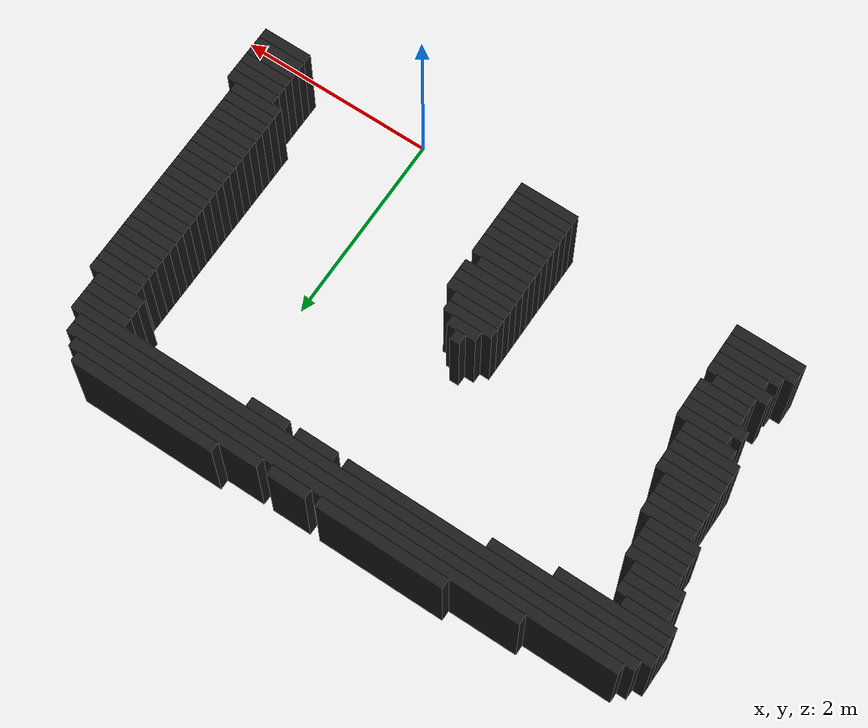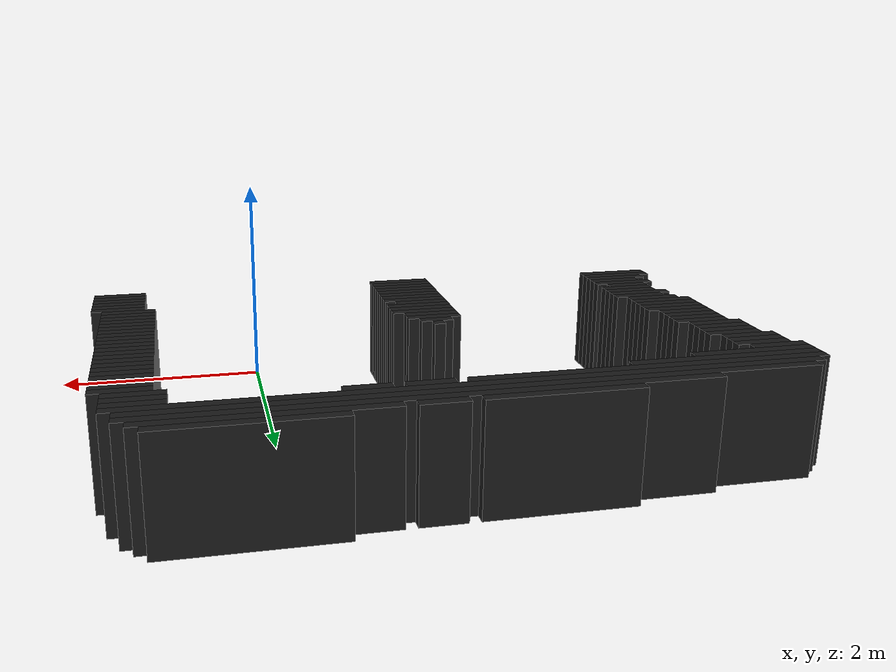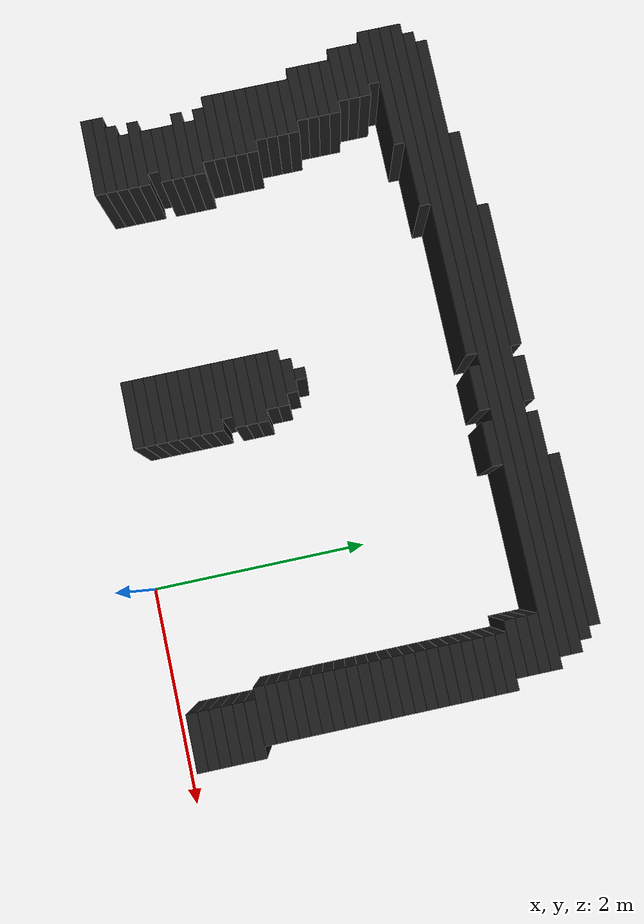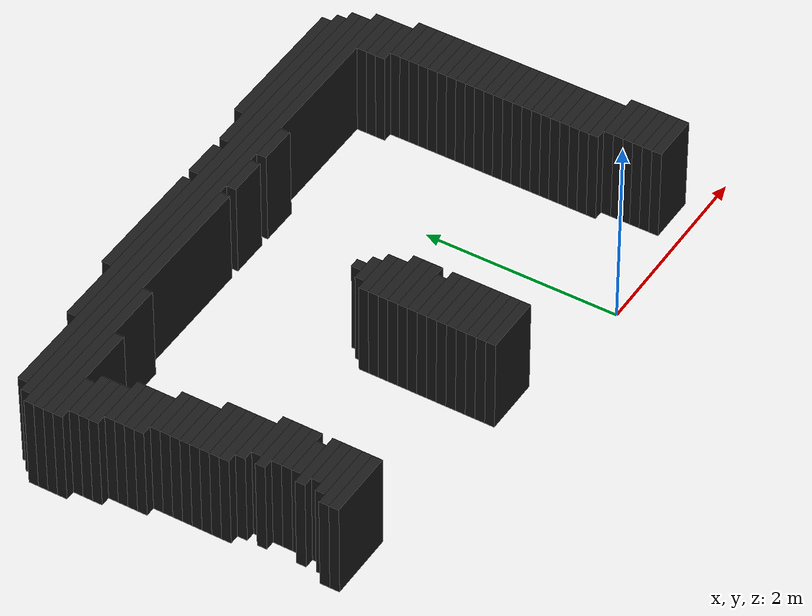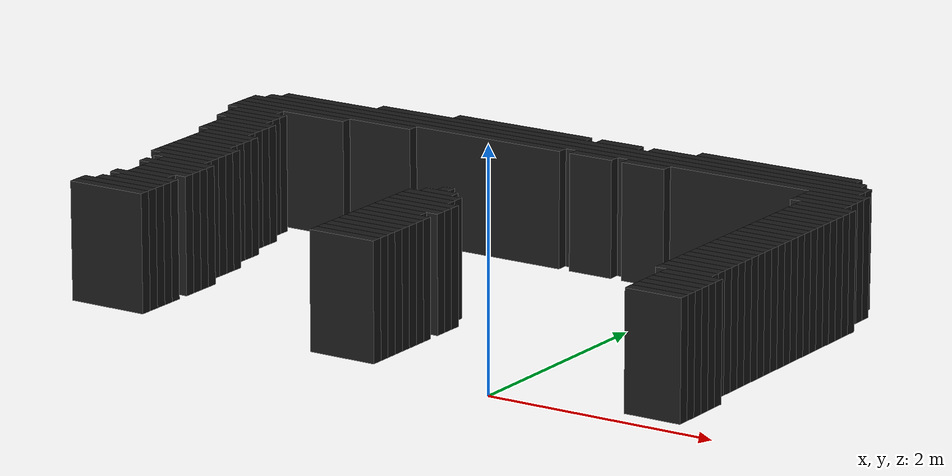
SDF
<sdf version="1.9">
 <world name="drawn_tb4_world">
  <model name="drawn_wall_0000">
   <static>true</static>
   <pose>0.3500 3.7500 0.5000 0.0000 0.0000 0.0000</pose>
   <link name="link">
    <collision name="collision"><geometry><box><size>1.5000 0.1000 1.0000</size></box></geometry></collision>
    <visual name="visual">
     <geometry><box><size>1.5000 0.1000 1.0000</size></box></geometry>
     <material><ambient>0.1 0.1 0.1 1</ambient><diffuse>0.1 0.1 0.1 1</diffuse></material>
    </visual>
   </link>
  </model>
  <model name="drawn_wall_0001">
   <static>true</static>
   <pose>-2.0500 3.6500 0.5000 0.0000 0.0000 0.0000</pose>
   <link name="link">
    <collision name="collision"><geometry><box><size>1.3000 0.1000 1.0000</size></box></geometry></collision>
    <visual name="visual">
     <geometry><box><size>1.3000 0.1000 1.0000</size></box></geometry>
     <material><ambient>0.1 0.1 0.1 1</ambient><diffuse>0.1 0.1 0.1 1</diffuse></material>
    </visual>
   </link>
  </model>
  <model name="drawn_wall_0002">
   <static>true</static>
   <pose>-1.1000 3.6500 0.5000 0.0000 0.0000 0.0000</pose>
   <link name="link">
    <collision name="collision"><geometry><box><size>0.4000 0.1000 1.0000</size></box></geometry></collision>
    <visual name="visual">
     <geometry><box><size>0.4000 0.1000 1.0000</size></box></geometry>
     <material><ambient>0.1 0.1 0.1 1</ambient><diffuse>0.1 0.1 0.1 1</diffuse></material>
    </visual>
   </link>
  </model>
  <model name="drawn_wall_0003">
   <static>true</static>
   <pose>0.2000 3.6500 0.5000 0.0000 0.0000 0.0000</pose>
   <link name="link">
    <collision name="collision"><geometry><box><size>2.0000 0.1000 1.0000</size></box></geometry></collision>
    <visual name="visual">
     <geometry><box><size>2.0000 0.1000 1.0000</size></box></geometry>
     <material><ambient>0.1 0.1 0.1 1</ambient><diffuse>0.1 0.1 0.1 1</diffuse></material>
    </visual>
   </link>
  </model>
  <model name="drawn_wall_0004">
   <static>true</static>
   <pose>-1.0500 3.5500 0.5000 0.0000 0.0000 0.0000</pose>
   <link name="link">
    <collision name="collision"><geometry><box><size>4.7000 0.1000 1.0000</size></box></geometry></collision>
    <visual name="visual">
     <geometry><box><size>4.7000 0.1000 1.0000</size></box></geometry>
     <material><ambient>0.1 0.1 0.1 1</ambient><diffuse>0.1 0.1 0.1 1</diffuse></material>
    </visual>
   </link>
  </model>
  <model name="drawn_wall_0005">
   <static>true</static>
   <pose>-1.5000 3.4500 0.5000 0.0000 0.0000 0.0000</pose>
   <link name="link">
    <collision name="collision"><geometry><box><size>5.6000 0.1000 1.0000</size></box></geometry></collision>
    <visual name="visual">
     <geometry><box><size>5.6000 0.1000 1.0000</size></box></geometry>
     <material><ambient>0.1 0.1 0.1 1</ambient><diffuse>0.1 0.1 0.1 1</diffuse></material>
    </visual>
   </link>
  </model>
  <model name="drawn_wall_0006">
   <static>true</static>
   <pose>-1.5000 3.3500 0.5000 0.0000 0.0000 0.0000</pose>
   <link name="link">
    <collision name="collision"><geometry><box><size>5.8000 0.1000 1.0000</size></box></geometry></collision>
    <visual name="visual">
     <geometry><box><size>5.8000 0.1000 1.0000</size></box></geometry>
     <material><ambient>0.1 0.1 0.1 1</ambient><diffuse>0.1 0.1 0.1 1</diffuse></material>
    </visual>
   </link>
  </model>
  <model name="drawn_wall_0007">
   <static>true</static>
   <pose>-2.9500 3.2500 0.5000 0.0000 0.0000 0.0000</pose>
   <link name="link">
    <collision name="collision"><geometry><box><size>3.1000 0.1000 1.0000</size></box></geometry></collision>
    <visual name="visual">
     <geometry><box><size>3.1000 0.1000 1.0000</size></box></geometry>
     <material><ambient>0.1 0.1 0.1 1</ambient><diffuse>0.1 0.1 0.1 1</diffuse></material>
    </visual>
   </link>
  </model>
  <model name="drawn_wall_0008">
   <static>true</static>
   <pose>-1.1000 3.2500 0.5000 0.0000 0.0000 0.0000</pose>
   <link name="link">
    <collision name="collision"><geometry><box><size>0.4000 0.1000 1.0000</size></box></geometry></collision>
    <visual name="visual">
     <geometry><box><size>0.4000 0.1000 1.0000</size></box></geometry>
     <material><ambient>0.1 0.1 0.1 1</ambient><diffuse>0.1 0.1 0.1 1</diffuse></material>
    </visual>
   </link>
  </model>
  <model name="drawn_wall_0009">
   <static>true</static>
   <pose>-0.6000 3.2500 0.5000 0.0000 0.0000 0.0000</pose>
   <link name="link">
    <collision name="collision"><geometry><box><size>0.4000 0.1000 1.0000</size></box></geometry></collision>
    <visual name="visual">
     <geometry><box><size>0.4000 0.1000 1.0000</size></box></geometry>
     <material><ambient>0.1 0.1 0.1 1</ambient><diffuse>0.1 0.1 0.1 1</diffuse></material>
    </visual>
   </link>
  </model>
  <model name="drawn_wall_0010">
   <static>true</static>
   <pose>1.1500 3.2500 0.5000 0.0000 0.0000 0.0000</pose>
   <link name="link">
    <collision name="collision"><geometry><box><size>0.5000 0.1000 1.0000</size></box></geometry></collision>
    <visual name="visual">
     <geometry><box><size>0.5000 0.1000 1.0000</size></box></geometry>
     <material><ambient>0.1 0.1 0.1 1</ambient><diffuse>0.1 0.1 0.1 1</diffuse></material>
    </visual>
   </link>
  </model>
  <model name="drawn_wall_0011">
   <static>true</static>
   <pose>-3.6500 3.1500 0.5000 0.0000 0.0000 0.0000</pose>
   <link name="link">
    <collision name="collision"><geometry><box><size>1.7000 0.1000 1.0000</size></box></geometry></collision>
    <visual name="visual">
     <geometry><box><size>1.7000 0.1000 1.0000</size></box></geometry>
     <material><ambient>0.1 0.1 0.1 1</ambient><diffuse>0.1 0.1 0.1 1</diffuse></material>
    </visual>
   </link>
  </model>
  <model name="drawn_wall_0012">
   <static>true</static>
   <pose>1.1500 3.1500 0.5000 0.0000 0.0000 0.0000</pose>
   <link name="link">
    <collision name="collision"><geometry><box><size>0.5000 0.1000 1.0000</size></box></geometry></collision>
    <visual name="visual">
     <geometry><box><size>0.5000 0.1000 1.0000</size></box></geometry>
     <material><ambient>0.1 0.1 0.1 1</ambient><diffuse>0.1 0.1 0.1 1</diffuse></material>
    </visual>
   </link>
  </model>
  <model name="drawn_wall_0013">
   <static>true</static>
   <pose>-3.9500 3.0500 0.5000 0.0000 0.0000 0.0000</pose>
   <link name="link">
    <collision name="collision"><geometry><box><size>1.1000 0.1000 1.0000</size></box></geometry></collision>
    <visual name="visual">
     <geometry><box><size>1.1000 0.1000 1.0000</size></box></geometry>
     <material><ambient>0.1 0.1 0.1 1</ambient><diffuse>0.1 0.1 0.1 1</diffuse></material>
    </visual>
   </link>
  </model>
  <model name="drawn_wall_0014">
   <static>true</static>
   <pose>1.1500 3.0500 0.5000 0.0000 0.0000 0.0000</pose>
   <link name="link">
    <collision name="collision"><geometry><box><size>0.5000 0.1000 1.0000</size></box></geometry></collision>
    <visual name="visual">
     <geometry><box><size>0.5000 0.1000 1.0000</size></box></geometry>
     <material><ambient>0.1 0.1 0.1 1</ambient><diffuse>0.1 0.1 0.1 1</diffuse></material>
    </visual>
   </link>
  </model>
  <model name="drawn_wall_0015">
   <static>true</static>
   <pose>-4.2500 2.9500 0.5000 0.0000 0.0000 0.0000</pose>
   <link name="link">
    <collision name="collision"><geometry><box><size>0.5000 0.1000 1.0000</size></box></geometry></collision>
    <visual name="visual">
     <geometry><box><size>0.5000 0.1000 1.0000</size></box></geometry>
     <material><ambient>0.1 0.1 0.1 1</ambient><diffuse>0.1 0.1 0.1 1</diffuse></material>
    </visual>
   </link>
  </model>
  <model name="drawn_wall_0016">
   <static>true</static>
   <pose>1.2500 2.9500 0.5000 0.0000 0.0000 0.0000</pose>
   <link name="link">
    <collision name="collision"><geometry><box><size>0.5000 0.1000 1.0000</size></box></geometry></collision>
    <visual name="visual">
     <geometry><box><size>0.5000 0.1000 1.0000</size></box></geometry>
     <material><ambient>0.1 0.1 0.1 1</ambient><diffuse>0.1 0.1 0.1 1</diffuse></material>
    </visual>
   </link>
  </model>
  <model name="drawn_wall_0017">
   <static>true</static>
   <pose>-4.1500 2.8500 0.5000 0.0000 0.0000 0.0000</pose>
   <link name="link">
    <collision name="collision"><geometry><box><size>0.5000 0.1000 1.0000</size></box></geometry></collision>
    <visual name="visual">
     <geometry><box><size>0.5000 0.1000 1.0000</size></box></geometry>
     <material><ambient>0.1 0.1 0.1 1</ambient><diffuse>0.1 0.1 0.1 1</diffuse></material>
    </visual>
   </link>
  </model>
  <model name="drawn_wall_0018">
   <static>true</static>
   <pose>1.2500 2.8500 0.5000 0.0000 0.0000 0.0000</pose>
   <link name="link">
    <collision name="collision"><geometry><box><size>0.5000 0.1000 1.0000</size></box></geometry></collision>
    <visual name="visual">
     <geometry><box><size>0.5000 0.1000 1.0000</size></box></geometry>
     <material><ambient>0.1 0.1 0.1 1</ambient><diffuse>0.1 0.1 0.1 1</diffuse></material>
    </visual>
   </link>
  </model>
  <model name="drawn_wall_0019">
   <static>true</static>
   <pose>-4.1500 2.7500 0.5000 0.0000 0.0000 0.0000</pose>
   <link name="link">
    <collision name="collision"><geometry><box><size>0.5000 0.1000 1.0000</size></box></geometry></collision>
    <visual name="visual">
     <geometry><box><size>0.5000 0.1000 1.0000</size></box></geometry>
     <material><ambient>0.1 0.1 0.1 1</ambient><diffuse>0.1 0.1 0.1 1</diffuse></material>
    </visual>
   </link>
  </model>
  <model name="drawn_wall_0020">
   <static>true</static>
   <pose>1.2500 2.7500 0.5000 0.0000 0.0000 0.0000</pose>
   <link name="link">
    <collision name="collision"><geometry><box><size>0.5000 0.1000 1.0000</size></box></geometry></collision>
    <visual name="visual">
     <geometry><box><size>0.5000 0.1000 1.0000</size></box></geometry>
     <material><ambient>0.1 0.1 0.1 1</ambient><diffuse>0.1 0.1 0.1 1</diffuse></material>
    </visual>
   </link>
  </model>
  <model name="drawn_wall_0021">
   <static>true</static>
   <pose>-4.1500 2.6500 0.5000 0.0000 0.0000 0.0000</pose>
   <link name="link">
    <collision name="collision"><geometry><box><size>0.5000 0.1000 1.0000</size></box></geometry></collision>
    <visual name="visual">
     <geometry><box><size>0.5000 0.1000 1.0000</size></box></geometry>
     <material><ambient>0.1 0.1 0.1 1</ambient><diffuse>0.1 0.1 0.1 1</diffuse></material>
    </visual>
   </link>
  </model>
  <model name="drawn_wall_0022">
   <static>true</static>
   <pose>1.2500 2.6500 0.5000 0.0000 0.0000 0.0000</pose>
   <link name="link">
    <collision name="collision"><geometry><box><size>0.5000 0.1000 1.0000</size></box></geometry></collision>
    <visual name="visual">
     <geometry><box><size>0.5000 0.1000 1.0000</size></box></geometry>
     <material><ambient>0.1 0.1 0.1 1</ambient><diffuse>0.1 0.1 0.1 1</diffuse></material>
    </visual>
   </link>
  </model>
  <model name="drawn_wall_0023">
   <static>true</static>
   <pose>-4.0500 2.5500 0.5000 0.0000 0.0000 0.0000</pose>
   <link name="link">
    <collision name="collision"><geometry><box><size>0.5000 0.1000 1.0000</size></box></geometry></collision>
    <visual name="visual">
     <geometry><box><size>0.5000 0.1000 1.0000</size></box></geometry>
     <material><ambient>0.1 0.1 0.1 1</ambient><diffuse>0.1 0.1 0.1 1</diffuse></material>
    </visual>
   </link>
  </model>
  <model name="drawn_wall_0024">
   <static>true</static>
   <pose>1.2500 2.5500 0.5000 0.0000 0.0000 0.0000</pose>
   <link name="link">
    <collision name="collision"><geometry><box><size>0.5000 0.1000 1.0000</size></box></geometry></collision>
    <visual name="visual">
     <geometry><box><size>0.5000 0.1000 1.0000</size></box></geometry>
     <material><ambient>0.1 0.1 0.1 1</ambient><diffuse>0.1 0.1 0.1 1</diffuse></material>
    </visual>
   </link>
  </model>
  <model name="drawn_wall_0025">
   <static>true</static>
   <pose>-4.0500 2.4500 0.5000 0.0000 0.0000 0.0000</pose>
   <link name="link">
    <collision name="collision"><geometry><box><size>0.5000 0.1000 1.0000</size></box></geometry></collision>
    <visual name="visual">
     <geometry><box><size>0.5000 0.1000 1.0000</size></box></geometry>
     <material><ambient>0.1 0.1 0.1 1</ambient><diffuse>0.1 0.1 0.1 1</diffuse></material>
    </visual>
   </link>
  </model>
  <model name="drawn_wall_0026">
   <static>true</static>
   <pose>1.2500 2.4500 0.5000 0.0000 0.0000 0.0000</pose>
   <link name="link">
    <collision name="collision"><geometry><box><size>0.5000 0.1000 1.0000</size></box></geometry></collision>
    <visual name="visual">
     <geometry><box><size>0.5000 0.1000 1.0000</size></box></geometry>
     <material><ambient>0.1 0.1 0.1 1</ambient><diffuse>0.1 0.1 0.1 1</diffuse></material>
    </visual>
   </link>
  </model>
  <model name="drawn_wall_0027">
   <static>true</static>
   <pose>-4.0500 2.3500 0.5000 0.0000 0.0000 0.0000</pose>
   <link name="link">
    <collision name="collision"><geometry><box><size>0.5000 0.1000 1.0000</size></box></geometry></collision>
    <visual name="visual">
     <geometry><box><size>0.5000 0.1000 1.0000</size></box></geometry>
     <material><ambient>0.1 0.1 0.1 1</ambient><diffuse>0.1 0.1 0.1 1</diffuse></material>
    </visual>
   </link>
  </model>
  <model name="drawn_wall_0028">
   <static>true</static>
   <pose>1.2500 2.3500 0.5000 0.0000 0.0000 0.0000</pose>
   <link name="link">
    <collision name="collision"><geometry><box><size>0.5000 0.1000 1.0000</size></box></geometry></collision>
    <visual name="visual">
     <geometry><box><size>0.5000 0.1000 1.0000</size></box></geometry>
     <material><ambient>0.1 0.1 0.1 1</ambient><diffuse>0.1 0.1 0.1 1</diffuse></material>
    </visual>
   </link>
  </model>
  <model name="drawn_wall_0029">
   <static>true</static>
   <pose>-4.0500 2.2500 0.5000 0.0000 0.0000 0.0000</pose>
   <link name="link">
    <collision name="collision"><geometry><box><size>0.5000 0.1000 1.0000</size></box></geometry></collision>
    <visual name="visual">
     <geometry><box><size>0.5000 0.1000 1.0000</size></box></geometry>
     <material><ambient>0.1 0.1 0.1 1</ambient><diffuse>0.1 0.1 0.1 1</diffuse></material>
    </visual>
   </link>
  </model>
  <model name="drawn_wall_0030">
   <static>true</static>
   <pose>1.2500 2.2500 0.5000 0.0000 0.0000 0.0000</pose>
   <link name="link">
    <collision name="collision"><geometry><box><size>0.5000 0.1000 1.0000</size></box></geometry></collision>
    <visual name="visual">
     <geometry><box><size>0.5000 0.1000 1.0000</size></box></geometry>
     <material><ambient>0.1 0.1 0.1 1</ambient><diffuse>0.1 0.1 0.1 1</diffuse></material>
    </visual>
   </link>
  </model>
  <model name="drawn_wall_0031">
   <static>true</static>
   <pose>-3.9500 2.1500 0.5000 0.0000 0.0000 0.0000</pose>
   <link name="link">
    <collision name="collision"><geometry><box><size>0.5000 0.1000 1.0000</size></box></geometry></collision>
    <visual name="visual">
     <geometry><box><size>0.5000 0.1000 1.0000</size></box></geometry>
     <material><ambient>0.1 0.1 0.1 1</ambient><diffuse>0.1 0.1 0.1 1</diffuse></material>
    </visual>
   </link>
  </model>
  <model name="drawn_wall_0032">
   <static>true</static>
   <pose>1.2500 2.1500 0.5000 0.0000 0.0000 0.0000</pose>
   <link name="link">
    <collision name="collision"><geometry><box><size>0.5000 0.1000 1.0000</size></box></geometry></collision>
    <visual name="visual">
     <geometry><box><size>0.5000 0.1000 1.0000</size></box></geometry>
     <material><ambient>0.1 0.1 0.1 1</ambient><diffuse>0.1 0.1 0.1 1</diffuse></material>
    </visual>
   </link>
  </model>
  <model name="drawn_wall_0033">
   <static>true</static>
   <pose>-3.9500 2.0500 0.5000 0.0000 0.0000 0.0000</pose>
   <link name="link">
    <collision name="collision"><geometry><box><size>0.5000 0.1000 1.0000</size></box></geometry></collision>
    <visual name="visual">
     <geometry><box><size>0.5000 0.1000 1.0000</size></box></geometry>
     <material><ambient>0.1 0.1 0.1 1</ambient><diffuse>0.1 0.1 0.1 1</diffuse></material>
    </visual>
   </link>
  </model>
  <model name="drawn_wall_0034">
   <static>true</static>
   <pose>1.2500 2.0500 0.5000 0.0000 0.0000 0.0000</pose>
   <link name="link">
    <collision name="collision"><geometry><box><size>0.5000 0.1000 1.0000</size></box></geometry></collision>
    <visual name="visual">
     <geometry><box><size>0.5000 0.1000 1.0000</size></box></geometry>
     <material><ambient>0.1 0.1 0.1 1</ambient><diffuse>0.1 0.1 0.1 1</diffuse></material>
    </visual>
   </link>
  </model>
  <model name="drawn_wall_0035">
   <static>true</static>
   <pose>-3.9500 1.9500 0.5000 0.0000 0.0000 0.0000</pose>
   <link name="link">
    <collision name="collision"><geometry><box><size>0.5000 0.1000 1.0000</size></box></geometry></collision>
    <visual name="visual">
     <geometry><box><size>0.5000 0.1000 1.0000</size></box></geometry>
     <material><ambient>0.1 0.1 0.1 1</ambient><diffuse>0.1 0.1 0.1 1</diffuse></material>
    </visual>
   </link>
  </model>
  <model name="drawn_wall_0036">
   <static>true</static>
   <pose>1.2500 1.9500 0.5000 0.0000 0.0000 0.0000</pose>
   <link name="link">
    <collision name="collision"><geometry><box><size>0.5000 0.1000 1.0000</size></box></geometry></collision>
    <visual name="visual">
     <geometry><box><size>0.5000 0.1000 1.0000</size></box></geometry>
     <material><ambient>0.1 0.1 0.1 1</ambient><diffuse>0.1 0.1 0.1 1</diffuse></material>
    </visual>
   </link>
  </model>
  <model name="drawn_wall_0037">
   <static>true</static>
   <pose>-3.9500 1.8500 0.5000 0.0000 0.0000 0.0000</pose>
   <link name="link">
    <collision name="collision"><geometry><box><size>0.5000 0.1000 1.0000</size></box></geometry></collision>
    <visual name="visual">
     <geometry><box><size>0.5000 0.1000 1.0000</size></box></geometry>
     <material><ambient>0.1 0.1 0.1 1</ambient><diffuse>0.1 0.1 0.1 1</diffuse></material>
    </visual>
   </link>
  </model>
  <model name="drawn_wall_0038">
   <static>true</static>
   <pose>1.2500 1.8500 0.5000 0.0000 0.0000 0.0000</pose>
   <link name="link">
    <collision name="collision"><geometry><box><size>0.5000 0.1000 1.0000</size></box></geometry></collision>
    <visual name="visual">
     <geometry><box><size>0.5000 0.1000 1.0000</size></box></geometry>
     <material><ambient>0.1 0.1 0.1 1</ambient><diffuse>0.1 0.1 0.1 1</diffuse></material>
    </visual>
   </link>
  </model>
  <model name="drawn_wall_0039">
   <static>true</static>
   <pose>-3.9000 1.7500 0.5000 0.0000 0.0000 0.0000</pose>
   <link name="link">
    <collision name="collision"><geometry><box><size>0.6000 0.1000 1.0000</size></box></geometry></collision>
    <visual name="visual">
     <geometry><box><size>0.6000 0.1000 1.0000</size></box></geometry>
     <material><ambient>0.1 0.1 0.1 1</ambient><diffuse>0.1 0.1 0.1 1</diffuse></material>
    </visual>
   </link>
  </model>
  <model name="drawn_wall_0040">
   <static>true</static>
   <pose>-1.5500 1.7500 0.5000 0.0000 0.0000 0.0000</pose>
   <link name="link">
    <collision name="collision"><geometry><box><size>0.1000 0.1000 1.0000</size></box></geometry></collision>
    <visual name="visual">
     <geometry><box><size>0.1000 0.1000 1.0000</size></box></geometry>
     <material><ambient>0.1 0.1 0.1 1</ambient><diffuse>0.1 0.1 0.1 1</diffuse></material>
    </visual>
   </link>
  </model>
  <model name="drawn_wall_0041">
   <static>true</static>
   <pose>1.2500 1.7500 0.5000 0.0000 0.0000 0.0000</pose>
   <link name="link">
    <collision name="collision"><geometry><box><size>0.5000 0.1000 1.0000</size></box></geometry></collision>
    <visual name="visual">
     <geometry><box><size>0.5000 0.1000 1.0000</size></box></geometry>
     <material><ambient>0.1 0.1 0.1 1</ambient><diffuse>0.1 0.1 0.1 1</diffuse></material>
    </visual>
   </link>
  </model>
  <model name="drawn_wall_0042">
   <static>true</static>
   <pose>-3.9000 1.6500 0.5000 0.0000 0.0000 0.0000</pose>
   <link name="link">
    <collision name="collision"><geometry><box><size>0.6000 0.1000 1.0000</size></box></geometry></collision>
    <visual name="visual">
     <geometry><box><size>0.6000 0.1000 1.0000</size></box></geometry>
     <material><ambient>0.1 0.1 0.1 1</ambient><diffuse>0.1 0.1 0.1 1</diffuse></material>
    </visual>
   </link>
  </model>
  <model name="drawn_wall_0043">
   <static>true</static>
   <pose>-1.5500 1.6500 0.5000 0.0000 0.0000 0.0000</pose>
   <link name="link">
    <collision name="collision"><geometry><box><size>0.3000 0.1000 1.0000</size></box></geometry></collision>
    <visual name="visual">
     <geometry><box><size>0.3000 0.1000 1.0000</size></box></geometry>
     <material><ambient>0.1 0.1 0.1 1</ambient><diffuse>0.1 0.1 0.1 1</diffuse></material>
    </visual>
   </link>
  </model>
  <model name="drawn_wall_0044">
   <static>true</static>
   <pose>1.2500 1.6500 0.5000 0.0000 0.0000 0.0000</pose>
   <link name="link">
    <collision name="collision"><geometry><box><size>0.5000 0.1000 1.0000</size></box></geometry></collision>
    <visual name="visual">
     <geometry><box><size>0.5000 0.1000 1.0000</size></box></geometry>
     <material><ambient>0.1 0.1 0.1 1</ambient><diffuse>0.1 0.1 0.1 1</diffuse></material>
    </visual>
   </link>
  </model>
  <model name="drawn_wall_0045">
   <static>true</static>
   <pose>-3.9000 1.5500 0.5000 0.0000 0.0000 0.0000</pose>
   <link name="link">
    <collision name="collision"><geometry><box><size>0.6000 0.1000 1.0000</size></box></geometry></collision>
    <visual name="visual">
     <geometry><box><size>0.6000 0.1000 1.0000</size></box></geometry>
     <material><ambient>0.1 0.1 0.1 1</ambient><diffuse>0.1 0.1 0.1 1</diffuse></material>
    </visual>
   </link>
  </model>
  <model name="drawn_wall_0046">
   <static>true</static>
   <pose>-1.5500 1.5500 0.5000 0.0000 0.0000 0.0000</pose>
   <link name="link">
    <collision name="collision"><geometry><box><size>0.5000 0.1000 1.0000</size></box></geometry></collision>
    <visual name="visual">
     <geometry><box><size>0.5000 0.1000 1.0000</size></box></geometry>
     <material><ambient>0.1 0.1 0.1 1</ambient><diffuse>0.1 0.1 0.1 1</diffuse></material>
    </visual>
   </link>
  </model>
  <model name="drawn_wall_0047">
   <static>true</static>
   <pose>1.2500 1.5500 0.5000 0.0000 0.0000 0.0000</pose>
   <link name="link">
    <collision name="collision"><geometry><box><size>0.5000 0.1000 1.0000</size></box></geometry></collision>
    <visual name="visual">
     <geometry><box><size>0.5000 0.1000 1.0000</size></box></geometry>
     <material><ambient>0.1 0.1 0.1 1</ambient><diffuse>0.1 0.1 0.1 1</diffuse></material>
    </visual>
   </link>
  </model>
  <model name="drawn_wall_0048">
   <static>true</static>
   <pose>-3.9000 1.4500 0.5000 0.0000 0.0000 0.0000</pose>
   <link name="link">
    <collision name="collision"><geometry><box><size>0.6000 0.1000 1.0000</size></box></geometry></collision>
    <visual name="visual">
     <geometry><box><size>0.6000 0.1000 1.0000</size></box></geometry>
     <material><ambient>0.1 0.1 0.1 1</ambient><diffuse>0.1 0.1 0.1 1</diffuse></material>
    </visual>
   </link>
  </model>
  <model name="drawn_wall_0049">
   <static>true</static>
   <pose>-1.5500 1.4500 0.5000 0.0000 0.0000 0.0000</pose>
   <link name="link">
    <collision name="collision"><geometry><box><size>0.5000 0.1000 1.0000</size></box></geometry></collision>
    <visual name="visual">
     <geometry><box><size>0.5000 0.1000 1.0000</size></box></geometry>
     <material><ambient>0.1 0.1 0.1 1</ambient><diffuse>0.1 0.1 0.1 1</diffuse></material>
    </visual>
   </link>
  </model>
  <model name="drawn_wall_0050">
   <static>true</static>
   <pose>1.2500 1.4500 0.5000 0.0000 0.0000 0.0000</pose>
   <link name="link">
    <collision name="collision"><geometry><box><size>0.5000 0.1000 1.0000</size></box></geometry></collision>
    <visual name="visual">
     <geometry><box><size>0.5000 0.1000 1.0000</size></box></geometry>
     <material><ambient>0.1 0.1 0.1 1</ambient><diffuse>0.1 0.1 0.1 1</diffuse></material>
    </visual>
   </link>
  </model>
  <model name="drawn_wall_0051">
   <static>true</static>
   <pose>-3.8500 1.3500 0.5000 0.0000 0.0000 0.0000</pose>
   <link name="link">
    <collision name="collision"><geometry><box><size>0.5000 0.1000 1.0000</size></box></geometry></collision>
    <visual name="visual">
     <geometry><box><size>0.5000 0.1000 1.0000</size></box></geometry>
     <material><ambient>0.1 0.1 0.1 1</ambient><diffuse>0.1 0.1 0.1 1</diffuse></material>
    </visual>
   </link>
  </model>
  <model name="drawn_wall_0052">
   <static>true</static>
   <pose>-1.5000 1.3500 0.5000 0.0000 0.0000 0.0000</pose>
   <link name="link">
    <collision name="collision"><geometry><box><size>0.6000 0.1000 1.0000</size></box></geometry></collision>
    <visual name="visual">
     <geometry><box><size>0.6000 0.1000 1.0000</size></box></geometry>
     <material><ambient>0.1 0.1 0.1 1</ambient><diffuse>0.1 0.1 0.1 1</diffuse></material>
    </visual>
   </link>
  </model>
  <model name="drawn_wall_0053">
   <static>true</static>
   <pose>1.2500 1.3500 0.5000 0.0000 0.0000 0.0000</pose>
   <link name="link">
    <collision name="collision"><geometry><box><size>0.5000 0.1000 1.0000</size></box></geometry></collision>
    <visual name="visual">
     <geometry><box><size>0.5000 0.1000 1.0000</size></box></geometry>
     <material><ambient>0.1 0.1 0.1 1</ambient><diffuse>0.1 0.1 0.1 1</diffuse></material>
    </visual>
   </link>
  </model>
  <model name="drawn_wall_0054">
   <static>true</static>
   <pose>-3.7500 1.2500 0.5000 0.0000 0.0000 0.0000</pose>
   <link name="link">
    <collision name="collision"><geometry><box><size>0.5000 0.1000 1.0000</size></box></geometry></collision>
    <visual name="visual">
     <geometry><box><size>0.5000 0.1000 1.0000</size></box></geometry>
     <material><ambient>0.1 0.1 0.1 1</ambient><diffuse>0.1 0.1 0.1 1</diffuse></material>
    </visual>
   </link>
  </model>
  <model name="drawn_wall_0055">
   <static>true</static>
   <pose>-1.5000 1.2500 0.5000 0.0000 0.0000 0.0000</pose>
   <link name="link">
    <collision name="collision"><geometry><box><size>0.6000 0.1000 1.0000</size></box></geometry></collision>
    <visual name="visual">
     <geometry><box><size>0.6000 0.1000 1.0000</size></box></geometry>
     <material><ambient>0.1 0.1 0.1 1</ambient><diffuse>0.1 0.1 0.1 1</diffuse></material>
    </visual>
   </link>
  </model>
  <model name="drawn_wall_0056">
   <static>true</static>
   <pose>1.2500 1.2500 0.5000 0.0000 0.0000 0.0000</pose>
   <link name="link">
    <collision name="collision"><geometry><box><size>0.5000 0.1000 1.0000</size></box></geometry></collision>
    <visual name="visual">
     <geometry><box><size>0.5000 0.1000 1.0000</size></box></geometry>
     <material><ambient>0.1 0.1 0.1 1</ambient><diffuse>0.1 0.1 0.1 1</diffuse></material>
    </visual>
   </link>
  </model>
  <model name="drawn_wall_0057">
   <static>true</static>
   <pose>-3.8000 1.1500 0.5000 0.0000 0.0000 0.0000</pose>
   <link name="link">
    <collision name="collision"><geometry><box><size>0.6000 0.1000 1.0000</size></box></geometry></collision>
    <visual name="visual">
     <geometry><box><size>0.6000 0.1000 1.0000</size></box></geometry>
     <material><ambient>0.1 0.1 0.1 1</ambient><diffuse>0.1 0.1 0.1 1</diffuse></material>
    </visual>
   </link>
  </model>
  <model name="drawn_wall_0058">
   <static>true</static>
   <pose>-1.5000 1.1500 0.5000 0.0000 0.0000 0.0000</pose>
   <link name="link">
    <collision name="collision"><geometry><box><size>0.6000 0.1000 1.0000</size></box></geometry></collision>
    <visual name="visual">
     <geometry><box><size>0.6000 0.1000 1.0000</size></box></geometry>
     <material><ambient>0.1 0.1 0.1 1</ambient><diffuse>0.1 0.1 0.1 1</diffuse></material>
    </visual>
   </link>
  </model>
  <model name="drawn_wall_0059">
   <static>true</static>
   <pose>1.2500 1.1500 0.5000 0.0000 0.0000 0.0000</pose>
   <link name="link">
    <collision name="collision"><geometry><box><size>0.5000 0.1000 1.0000</size></box></geometry></collision>
    <visual name="visual">
     <geometry><box><size>0.5000 0.1000 1.0000</size></box></geometry>
     <material><ambient>0.1 0.1 0.1 1</ambient><diffuse>0.1 0.1 0.1 1</diffuse></material>
    </visual>
   </link>
  </model>
  <model name="drawn_wall_0060">
   <static>true</static>
   <pose>-3.7500 1.0500 0.5000 0.0000 0.0000 0.0000</pose>
   <link name="link">
    <collision name="collision"><geometry><box><size>0.5000 0.1000 1.0000</size></box></geometry></collision>
    <visual name="visual">
     <geometry><box><size>0.5000 0.1000 1.0000</size></box></geometry>
     <material><ambient>0.1 0.1 0.1 1</ambient><diffuse>0.1 0.1 0.1 1</diffuse></material>
    </visual>
   </link>
  </model>
  <model name="drawn_wall_0061">
   <static>true</static>
   <pose>-1.5500 1.0500 0.5000 0.0000 0.0000 0.0000</pose>
   <link name="link">
    <collision name="collision"><geometry><box><size>0.5000 0.1000 1.0000</size></box></geometry></collision>
    <visual name="visual">
     <geometry><box><size>0.5000 0.1000 1.0000</size></box></geometry>
     <material><ambient>0.1 0.1 0.1 1</ambient><diffuse>0.1 0.1 0.1 1</diffuse></material>
    </visual>
   </link>
  </model>
  <model name="drawn_wall_0062">
   <static>true</static>
   <pose>1.2500 1.0500 0.5000 0.0000 0.0000 0.0000</pose>
   <link name="link">
    <collision name="collision"><geometry><box><size>0.5000 0.1000 1.0000</size></box></geometry></collision>
    <visual name="visual">
     <geometry><box><size>0.5000 0.1000 1.0000</size></box></geometry>
     <material><ambient>0.1 0.1 0.1 1</ambient><diffuse>0.1 0.1 0.1 1</diffuse></material>
    </visual>
   </link>
  </model>
  <model name="drawn_wall_0063">
   <static>true</static>
   <pose>-3.7500 0.9500 0.5000 0.0000 0.0000 0.0000</pose>
   <link name="link">
    <collision name="collision"><geometry><box><size>0.5000 0.1000 1.0000</size></box></geometry></collision>
    <visual name="visual">
     <geometry><box><size>0.5000 0.1000 1.0000</size></box></geometry>
     <material><ambient>0.1 0.1 0.1 1</ambient><diffuse>0.1 0.1 0.1 1</diffuse></material>
    </visual>
   </link>
  </model>
  <model name="drawn_wall_0064">
   <static>true</static>
   <pose>-1.5000 0.9500 0.5000 0.0000 0.0000 0.0000</pose>
   <link name="link">
    <collision name="collision"><geometry><box><size>0.6000 0.1000 1.0000</size></box></geometry></collision>
    <visual name="visual">
     <geometry><box><size>0.6000 0.1000 1.0000</size></box></geometry>
     <material><ambient>0.1 0.1 0.1 1</ambient><diffuse>0.1 0.1 0.1 1</diffuse></material>
    </visual>
   </link>
  </model>
  <model name="drawn_wall_0065">
   <static>true</static>
   <pose>1.2500 0.9500 0.5000 0.0000 0.0000 0.0000</pose>
   <link name="link">
    <collision name="collision"><geometry><box><size>0.5000 0.1000 1.0000</size></box></geometry></collision>
    <visual name="visual">
     <geometry><box><size>0.5000 0.1000 1.0000</size></box></geometry>
     <material><ambient>0.1 0.1 0.1 1</ambient><diffuse>0.1 0.1 0.1 1</diffuse></material>
    </visual>
   </link>
  </model>
  <model name="drawn_wall_0066">
   <static>true</static>
   <pose>-3.8000 0.8500 0.5000 0.0000 0.0000 0.0000</pose>
   <link name="link">
    <collision name="collision"><geometry><box><size>0.4000 0.1000 1.0000</size></box></geometry></collision>
    <visual name="visual">
     <geometry><box><size>0.4000 0.1000 1.0000</size></box></geometry>
     <material><ambient>0.1 0.1 0.1 1</ambient><diffuse>0.1 0.1 0.1 1</diffuse></material>
    </visual>
   </link>
  </model>
  <model name="drawn_wall_0067">
   <static>true</static>
   <pose>-1.5000 0.8500 0.5000 0.0000 0.0000 0.0000</pose>
   <link name="link">
    <collision name="collision"><geometry><box><size>0.6000 0.1000 1.0000</size></box></geometry></collision>
    <visual name="visual">
     <geometry><box><size>0.6000 0.1000 1.0000</size></box></geometry>
     <material><ambient>0.1 0.1 0.1 1</ambient><diffuse>0.1 0.1 0.1 1</diffuse></material>
    </visual>
   </link>
  </model>
  <model name="drawn_wall_0068">
   <static>true</static>
   <pose>1.2500 0.8500 0.5000 0.0000 0.0000 0.0000</pose>
   <link name="link">
    <collision name="collision"><geometry><box><size>0.5000 0.1000 1.0000</size></box></geometry></collision>
    <visual name="visual">
     <geometry><box><size>0.5000 0.1000 1.0000</size></box></geometry>
     <material><ambient>0.1 0.1 0.1 1</ambient><diffuse>0.1 0.1 0.1 1</diffuse></material>
    </visual>
   </link>
  </model>
  <model name="drawn_wall_0069">
   <static>true</static>
   <pose>-3.8000 0.7500 0.5000 0.0000 0.0000 0.0000</pose>
   <link name="link">
    <collision name="collision"><geometry><box><size>0.6000 0.1000 1.0000</size></box></geometry></collision>
    <visual name="visual">
     <geometry><box><size>0.6000 0.1000 1.0000</size></box></geometry>
     <material><ambient>0.1 0.1 0.1 1</ambient><diffuse>0.1 0.1 0.1 1</diffuse></material>
    </visual>
   </link>
  </model>
  <model name="drawn_wall_0070">
   <static>true</static>
   <pose>-1.5000 0.7500 0.5000 0.0000 0.0000 0.0000</pose>
   <link name="link">
    <collision name="collision"><geometry><box><size>0.6000 0.1000 1.0000</size></box></geometry></collision>
    <visual name="visual">
     <geometry><box><size>0.6000 0.1000 1.0000</size></box></geometry>
     <material><ambient>0.1 0.1 0.1 1</ambient><diffuse>0.1 0.1 0.1 1</diffuse></material>
    </visual>
   </link>
  </model>
  <model name="drawn_wall_0071">
   <static>true</static>
   <pose>1.3500 0.7500 0.5000 0.0000 0.0000 0.0000</pose>
   <link name="link">
    <collision name="collision"><geometry><box><size>0.5000 0.1000 1.0000</size></box></geometry></collision>
    <visual name="visual">
     <geometry><box><size>0.5000 0.1000 1.0000</size></box></geometry>
     <material><ambient>0.1 0.1 0.1 1</ambient><diffuse>0.1 0.1 0.1 1</diffuse></material>
    </visual>
   </link>
  </model>
  <model name="drawn_wall_0072">
   <static>true</static>
   <pose>-3.7500 0.6500 0.5000 0.0000 0.0000 0.0000</pose>
   <link name="link">
    <collision name="collision"><geometry><box><size>0.5000 0.1000 1.0000</size></box></geometry></collision>
    <visual name="visual">
     <geometry><box><size>0.5000 0.1000 1.0000</size></box></geometry>
     <material><ambient>0.1 0.1 0.1 1</ambient><diffuse>0.1 0.1 0.1 1</diffuse></material>
    </visual>
   </link>
  </model>
  <model name="drawn_wall_0073">
   <static>true</static>
   <pose>-1.5000 0.6500 0.5000 0.0000 0.0000 0.0000</pose>
   <link name="link">
    <collision name="collision"><geometry><box><size>0.6000 0.1000 1.0000</size></box></geometry></collision>
    <visual name="visual">
     <geometry><box><size>0.6000 0.1000 1.0000</size></box></geometry>
     <material><ambient>0.1 0.1 0.1 1</ambient><diffuse>0.1 0.1 0.1 1</diffuse></material>
    </visual>
   </link>
  </model>
  <model name="drawn_wall_0074">
   <static>true</static>
   <pose>1.3500 0.6500 0.5000 0.0000 0.0000 0.0000</pose>
   <link name="link">
    <collision name="collision"><geometry><box><size>0.5000 0.1000 1.0000</size></box></geometry></collision>
    <visual name="visual">
     <geometry><box><size>0.5000 0.1000 1.0000</size></box></geometry>
     <material><ambient>0.1 0.1 0.1 1</ambient><diffuse>0.1 0.1 0.1 1</diffuse></material>
    </visual>
   </link>
  </model>
  <model name="drawn_wall_0075">
   <static>true</static>
   <pose>-3.8000 0.5500 0.5000 0.0000 0.0000 0.0000</pose>
   <link name="link">
    <collision name="collision"><geometry><box><size>0.6000 0.1000 1.0000</size></box></geometry></collision>
    <visual name="visual">
     <geometry><box><size>0.6000 0.1000 1.0000</size></box></geometry>
     <material><ambient>0.1 0.1 0.1 1</ambient><diffuse>0.1 0.1 0.1 1</diffuse></material>
    </visual>
   </link>
  </model>
  <model name="drawn_wall_0076">
   <static>true</static>
   <pose>-1.5000 0.5500 0.5000 0.0000 0.0000 0.0000</pose>
   <link name="link">
    <collision name="collision"><geometry><box><size>0.6000 0.1000 1.0000</size></box></geometry></collision>
    <visual name="visual">
     <geometry><box><size>0.6000 0.1000 1.0000</size></box></geometry>
     <material><ambient>0.1 0.1 0.1 1</ambient><diffuse>0.1 0.1 0.1 1</diffuse></material>
    </visual>
   </link>
  </model>
  <model name="drawn_wall_0077">
   <static>true</static>
   <pose>1.3500 0.5500 0.5000 0.0000 0.0000 0.0000</pose>
   <link name="link">
    <collision name="collision"><geometry><box><size>0.5000 0.1000 1.0000</size></box></geometry></collision>
    <visual name="visual">
     <geometry><box><size>0.5000 0.1000 1.0000</size></box></geometry>
     <material><ambient>0.1 0.1 0.1 1</ambient><diffuse>0.1 0.1 0.1 1</diffuse></material>
    </visual>
   </link>
  </model>
  <model name="drawn_wall_0078">
   <static>true</static>
   <pose>-3.8500 0.4500 0.5000 0.0000 0.0000 0.0000</pose>
   <link name="link">
    <collision name="collision"><geometry><box><size>0.7000 0.1000 1.0000</size></box></geometry></collision>
    <visual name="visual">
     <geometry><box><size>0.7000 0.1000 1.0000</size></box></geometry>
     <material><ambient>0.1 0.1 0.1 1</ambient><diffuse>0.1 0.1 0.1 1</diffuse></material>
    </visual>
   </link>
  </model>
  <model name="drawn_wall_0079">
   <static>true</static>
   <pose>-1.5000 0.4500 0.5000 0.0000 0.0000 0.0000</pose>
   <link name="link">
    <collision name="collision"><geometry><box><size>0.6000 0.1000 1.0000</size></box></geometry></collision>
    <visual name="visual">
     <geometry><box><size>0.6000 0.1000 1.0000</size></box></geometry>
     <material><ambient>0.1 0.1 0.1 1</ambient><diffuse>0.1 0.1 0.1 1</diffuse></material>
    </visual>
   </link>
  </model>
  <model name="drawn_wall_0080">
   <static>true</static>
   <pose>1.3500 0.4500 0.5000 0.0000 0.0000 0.0000</pose>
   <link name="link">
    <collision name="collision"><geometry><box><size>0.5000 0.1000 1.0000</size></box></geometry></collision>
    <visual name="visual">
     <geometry><box><size>0.5000 0.1000 1.0000</size></box></geometry>
     <material><ambient>0.1 0.1 0.1 1</ambient><diffuse>0.1 0.1 0.1 1</diffuse></material>
    </visual>
   </link>
  </model>
  <model name="drawn_wall_0081">
   <static>true</static>
   <pose>-3.8500 0.3500 0.5000 0.0000 0.0000 0.0000</pose>
   <link name="link">
    <collision name="collision"><geometry><box><size>0.7000 0.1000 1.0000</size></box></geometry></collision>
    <visual name="visual">
     <geometry><box><size>0.7000 0.1000 1.0000</size></box></geometry>
     <material><ambient>0.1 0.1 0.1 1</ambient><diffuse>0.1 0.1 0.1 1</diffuse></material>
    </visual>
   </link>
  </model>
  <model name="drawn_wall_0082">
   <static>true</static>
   <pose>-1.5000 0.3500 0.5000 0.0000 0.0000 0.0000</pose>
   <link name="link">
    <collision name="collision"><geometry><box><size>0.6000 0.1000 1.0000</size></box></geometry></collision>
    <visual name="visual">
     <geometry><box><size>0.6000 0.1000 1.0000</size></box></geometry>
     <material><ambient>0.1 0.1 0.1 1</ambient><diffuse>0.1 0.1 0.1 1</diffuse></material>
    </visual>
   </link>
  </model>
  <model name="drawn_wall_0083">
   <static>true</static>
   <pose>1.3500 0.3500 0.5000 0.0000 0.0000 0.0000</pose>
   <link name="link">
    <collision name="collision"><geometry><box><size>0.5000 0.1000 1.0000</size></box></geometry></collision>
    <visual name="visual">
     <geometry><box><size>0.5000 0.1000 1.0000</size></box></geometry>
     <material><ambient>0.1 0.1 0.1 1</ambient><diffuse>0.1 0.1 0.1 1</diffuse></material>
    </visual>
   </link>
  </model>
  <model name="drawn_wall_0085">
   <static>true</static>
   <pose>-1.5000 0.2500 0.5000 0.0000 0.0000 0.0000</pose>
   <link name="link">
    <collision name="collision"><geometry><box><size>0.6000 0.1000 1.0000</size></box></geometry></collision>
    <visual name="visual">
     <geometry><box><size>0.6000 0.1000 1.0000</size></box></geometry>
     <material><ambient>0.1 0.1 0.1 1</ambient><diffuse>0.1 0.1 0.1 1</diffuse></material>
    </visual>
   </link>
  </model>
  <model name="drawn_wall_0086">
   <static>true</static>
   <pose>1.3500 0.2500 0.5000 0.0000 0.0000 0.0000</pose>
   <link name="link">
    <collision name="collision"><geometry><box><size>0.5000 0.1000 1.0000</size></box></geometry></collision>
    <visual name="visual">
     <geometry><box><size>0.5000 0.1000 1.0000</size></box></geometry>
     <material><ambient>0.1 0.1 0.1 1</ambient><diffuse>0.1 0.1 0.1 1</diffuse></material>
    </visual>
   </link>
  </model>
 </world>
</sdf>
